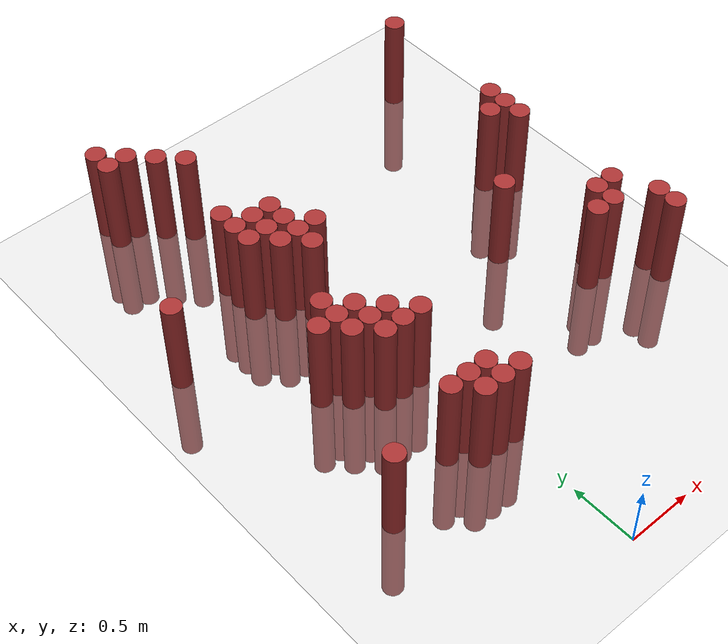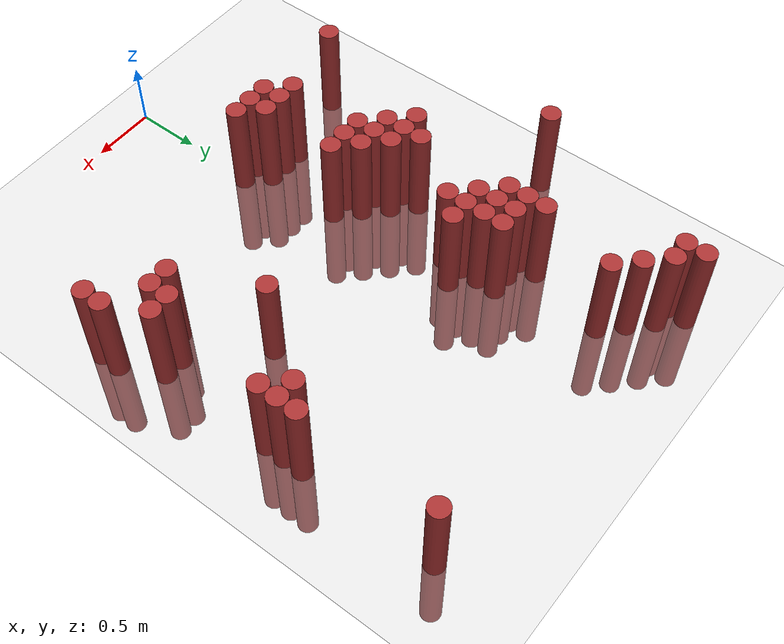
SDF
<sdf version="1.6">
 <world name="default">
  <model name="ground_plane">
   <static>1</static>
   <link name="link">
    <collision name="collision">
     <geometry><plane><normal>0 0 1</normal><size>100 100</size></plane></geometry>
     <surface><friction><ode><mu>100</mu><mu2>50</mu2></ode></friction></surface>
    </collision>
    <visual name="visual">
     <cast_shadows>0</cast_shadows>
     <geometry><plane><normal>0 0 1</normal><size>100 100</size></plane></geometry>
     <material>
      <script><uri>file://media/materials/scripts/gazebo.material</uri><name>Gazebo/Grey</name></script>
     </material>
    </visual>
   </link>
  </model>
  <model name="unit_cylinder_152">
   <static>1</static>
   <pose>-1.325000 2.875000 0.000000 0.000000 0.000000 0.000000</pose>
   <link name="link">
    <inertial>
     <mass>1</mass>
     <inertia><ixx>0.145833</ixx><ixy>0</ixy><ixz>0</ixz><iyy>0.145833</iyy><iyz>0</iyz><izz>0.125</izz></inertia>
    </inertial>
    <collision name="collision">
     <geometry><cylinder><radius>0.075000</radius><length>1.5</length></cylinder></geometry>
    </collision>
    <visual name="visual">
     <geometry><cylinder><radius>0.075000</radius><length>1.5</length></cylinder></geometry>
     <material>
      <ambient>0.648000 0.192000 0.192000 1</ambient>
      <diffuse>0.648000 0.192000 0.192000 1</diffuse>
     </material>
     <material>
      <script><name>Gazebo/Grey</name><uri>file://media/materials/scripts/gazebo.material</uri></script>
     </material>
    </visual>
   </link>
  </model>
  <model name="unit_cylinder_157">
   <static>1</static>
   <pose>-1.025000 1.075000 0.000000 0.000000 0.000000 0.000000</pose>
   <link name="link">
    <inertial>
     <mass>1</mass>
     <inertia><ixx>0.145833</ixx><ixy>0</ixy><ixz>0</ixz><iyy>0.145833</iyy><iyz>0</iyz><izz>0.125</izz></inertia>
    </inertial>
    <collision name="collision">
     <geometry><cylinder><radius>0.075000</radius><length>1.5</length></cylinder></geometry>
    </collision>
    <visual name="visual">
     <geometry><cylinder><radius>0.075000</radius><length>1.5</length></cylinder></geometry>
     <material>
      <ambient>0.648000 0.192000 0.192000 1</ambient>
      <diffuse>0.648000 0.192000 0.192000 1</diffuse>
     </material>
     <material>
      <script><name>Gazebo/Grey</name><uri>file://media/materials/scripts/gazebo.material</uri></script>
     </material>
    </visual>
   </link>
  </model>
  <model name="unit_cylinder_161">
   <static>1</static>
   <pose>-0.875000 4.225000 0.000000 0.000000 0.000000 0.000000</pose>
   <link name="link">
    <inertial>
     <mass>1</mass>
     <inertia><ixx>0.145833</ixx><ixy>0</ixy><ixz>0</ixz><iyy>0.145833</iyy><iyz>0</iyz><izz>0.125</izz></inertia>
    </inertial>
    <collision name="collision">
     <geometry><cylinder><radius>0.075000</radius><length>1.5</length></cylinder></geometry>
    </collision>
    <visual name="visual">
     <geometry><cylinder><radius>0.075000</radius><length>1.5</length></cylinder></geometry>
     <material>
      <ambient>0.648000 0.192000 0.192000 1</ambient>
      <diffuse>0.648000 0.192000 0.192000 1</diffuse>
     </material>
     <material>
      <script><name>Gazebo/Grey</name><uri>file://media/materials/scripts/gazebo.material</uri></script>
     </material>
    </visual>
   </link>
  </model>
  <model name="unit_cylinder_162">
   <static>1</static>
   <pose>-0.875000 4.375000 0.000000 0.000000 0.000000 0.000000</pose>
   <link name="link">
    <inertial>
     <mass>1</mass>
     <inertia><ixx>0.145833</ixx><ixy>0</ixy><ixz>0</ixz><iyy>0.145833</iyy><iyz>0</iyz><izz>0.125</izz></inertia>
    </inertial>
    <collision name="collision">
     <geometry><cylinder><radius>0.075000</radius><length>1.5</length></cylinder></geometry>
    </collision>
    <visual name="visual">
     <geometry><cylinder><radius>0.075000</radius><length>1.5</length></cylinder></geometry>
     <material>
      <ambient>0.648000 0.192000 0.192000 1</ambient>
      <diffuse>0.648000 0.192000 0.192000 1</diffuse>
     </material>
     <material>
      <script><name>Gazebo/Grey</name><uri>file://media/materials/scripts/gazebo.material</uri></script>
     </material>
    </visual>
   </link>
  </model>
  <model name="unit_cylinder_166">
   <static>1</static>
   <pose>-0.725000 2.125000 0.000000 0.000000 0.000000 0.000000</pose>
   <link name="link">
    <inertial>
     <mass>1</mass>
     <inertia><ixx>0.145833</ixx><ixy>0</ixy><ixz>0</ixz><iyy>0.145833</iyy><iyz>0</iyz><izz>0.125</izz></inertia>
    </inertial>
    <collision name="collision">
     <geometry><cylinder><radius>0.075000</radius><length>1.5</length></cylinder></geometry>
    </collision>
    <visual name="visual">
     <geometry><cylinder><radius>0.075000</radius><length>1.5</length></cylinder></geometry>
     <material>
      <ambient>0.648000 0.192000 0.192000 1</ambient>
      <diffuse>0.648000 0.192000 0.192000 1</diffuse>
     </material>
     <material>
      <script><name>Gazebo/Grey</name><uri>file://media/materials/scripts/gazebo.material</uri></script>
     </material>
    </visual>
   </link>
  </model>
  <model name="unit_cylinder_167">
   <static>1</static>
   <pose>-0.725000 4.225000 0.000000 0.000000 0.000000 0.000000</pose>
   <link name="link">
    <inertial>
     <mass>1</mass>
     <inertia><ixx>0.145833</ixx><ixy>0</ixy><ixz>0</ixz><iyy>0.145833</iyy><iyz>0</iyz><izz>0.125</izz></inertia>
    </inertial>
    <collision name="collision">
     <geometry><cylinder><radius>0.075000</radius><length>1.5</length></cylinder></geometry>
    </collision>
    <visual name="visual">
     <geometry><cylinder><radius>0.075000</radius><length>1.5</length></cylinder></geometry>
     <material>
      <ambient>0.648000 0.192000 0.192000 1</ambient>
      <diffuse>0.648000 0.192000 0.192000 1</diffuse>
     </material>
     <material>
      <script><name>Gazebo/Grey</name><uri>file://media/materials/scripts/gazebo.material</uri></script>
     </material>
    </visual>
   </link>
  </model>
  <model name="unit_cylinder_169">
   <static>1</static>
   <pose>-0.575000 1.975000 0.000000 0.000000 0.000000 0.000000</pose>
   <link name="link">
    <inertial>
     <mass>1</mass>
     <inertia><ixx>0.145833</ixx><ixy>0</ixy><ixz>0</ixz><iyy>0.145833</iyy><iyz>0</iyz><izz>0.125</izz></inertia>
    </inertial>
    <collision name="collision">
     <geometry><cylinder><radius>0.075000</radius><length>1.5</length></cylinder></geometry>
    </collision>
    <visual name="visual">
     <geometry><cylinder><radius>0.075000</radius><length>1.5</length></cylinder></geometry>
     <material>
      <ambient>0.648000 0.192000 0.192000 1</ambient>
      <diffuse>0.648000 0.192000 0.192000 1</diffuse>
     </material>
     <material>
      <script><name>Gazebo/Grey</name><uri>file://media/materials/scripts/gazebo.material</uri></script>
     </material>
    </visual>
   </link>
  </model>
  <model name="unit_cylinder_170">
   <static>1</static>
   <pose>-0.575000 2.125000 0.000000 0.000000 0.000000 0.000000</pose>
   <link name="link">
    <inertial>
     <mass>1</mass>
     <inertia><ixx>0.145833</ixx><ixy>0</ixy><ixz>0</ixz><iyy>0.145833</iyy><iyz>0</iyz><izz>0.125</izz></inertia>
    </inertial>
    <collision name="collision">
     <geometry><cylinder><radius>0.075000</radius><length>1.5</length></cylinder></geometry>
    </collision>
    <visual name="visual">
     <geometry><cylinder><radius>0.075000</radius><length>1.5</length></cylinder></geometry>
     <material>
      <ambient>0.648000 0.192000 0.192000 1</ambient>
      <diffuse>0.648000 0.192000 0.192000 1</diffuse>
     </material>
     <material>
      <script><name>Gazebo/Grey</name><uri>file://media/materials/scripts/gazebo.material</uri></script>
     </material>
    </visual>
   </link>
  </model>
  <model name="unit_cylinder_171">
   <static>1</static>
   <pose>-0.575000 2.275000 0.000000 0.000000 0.000000 0.000000</pose>
   <link name="link">
    <inertial>
     <mass>1</mass>
     <inertia><ixx>0.145833</ixx><ixy>0</ixy><ixz>0</ixz><iyy>0.145833</iyy><iyz>0</iyz><izz>0.125</izz></inertia>
    </inertial>
    <collision name="collision">
     <geometry><cylinder><radius>0.075000</radius><length>1.5</length></cylinder></geometry>
    </collision>
    <visual name="visual">
     <geometry><cylinder><radius>0.075000</radius><length>1.5</length></cylinder></geometry>
     <material>
      <ambient>0.648000 0.192000 0.192000 1</ambient>
      <diffuse>0.648000 0.192000 0.192000 1</diffuse>
     </material>
     <material>
      <script><name>Gazebo/Grey</name><uri>file://media/materials/scripts/gazebo.material</uri></script>
     </material>
    </visual>
   </link>
  </model>
  <model name="unit_cylinder_172">
   <static>1</static>
   <pose>-0.575000 3.025000 0.000000 0.000000 0.000000 0.000000</pose>
   <link name="link">
    <inertial>
     <mass>1</mass>
     <inertia><ixx>0.145833</ixx><ixy>0</ixy><ixz>0</ixz><iyy>0.145833</iyy><iyz>0</iyz><izz>0.125</izz></inertia>
    </inertial>
    <collision name="collision">
     <geometry><cylinder><radius>0.075000</radius><length>1.5</length></cylinder></geometry>
    </collision>
    <visual name="visual">
     <geometry><cylinder><radius>0.075000</radius><length>1.5</length></cylinder></geometry>
     <material>
      <ambient>0.648000 0.192000 0.192000 1</ambient>
      <diffuse>0.648000 0.192000 0.192000 1</diffuse>
     </material>
     <material>
      <script><name>Gazebo/Grey</name><uri>file://media/materials/scripts/gazebo.material</uri></script>
     </material>
    </visual>
   </link>
  </model>
  <model name="unit_cylinder_173">
   <static>1</static>
   <pose>-0.575000 3.175000 0.000000 0.000000 0.000000 0.000000</pose>
   <link name="link">
    <inertial>
     <mass>1</mass>
     <inertia><ixx>0.145833</ixx><ixy>0</ixy><ixz>0</ixz><iyy>0.145833</iyy><iyz>0</iyz><izz>0.125</izz></inertia>
    </inertial>
    <collision name="collision">
     <geometry><cylinder><radius>0.075000</radius><length>1.5</length></cylinder></geometry>
    </collision>
    <visual name="visual">
     <geometry><cylinder><radius>0.075000</radius><length>1.5</length></cylinder></geometry>
     <material>
      <ambient>0.648000 0.192000 0.192000 1</ambient>
      <diffuse>0.648000 0.192000 0.192000 1</diffuse>
     </material>
     <material>
      <script><name>Gazebo/Grey</name><uri>file://media/materials/scripts/gazebo.material</uri></script>
     </material>
    </visual>
   </link>
  </model>
  <model name="unit_cylinder_174">
   <static>1</static>
   <pose>-0.575000 3.325000 0.000000 0.000000 0.000000 0.000000</pose>
   <link name="link">
    <inertial>
     <mass>1</mass>
     <inertia><ixx>0.145833</ixx><ixy>0</ixy><ixz>0</ixz><iyy>0.145833</iyy><iyz>0</iyz><izz>0.125</izz></inertia>
    </inertial>
    <collision name="collision">
     <geometry><cylinder><radius>0.075000</radius><length>1.5</length></cylinder></geometry>
    </collision>
    <visual name="visual">
     <geometry><cylinder><radius>0.075000</radius><length>1.5</length></cylinder></geometry>
     <material>
      <ambient>0.648000 0.192000 0.192000 1</ambient>
      <diffuse>0.648000 0.192000 0.192000 1</diffuse>
     </material>
     <material>
      <script><name>Gazebo/Grey</name><uri>file://media/materials/scripts/gazebo.material</uri></script>
     </material>
    </visual>
   </link>
  </model>
  <model name="unit_cylinder_175">
   <static>1</static>
   <pose>-0.575000 4.075000 0.000000 0.000000 0.000000 0.000000</pose>
   <link name="link">
    <inertial>
     <mass>1</mass>
     <inertia><ixx>0.145833</ixx><ixy>0</ixy><ixz>0</ixz><iyy>0.145833</iyy><iyz>0</iyz><izz>0.125</izz></inertia>
    </inertial>
    <collision name="collision">
     <geometry><cylinder><radius>0.075000</radius><length>1.5</length></cylinder></geometry>
    </collision>
    <visual name="visual">
     <geometry><cylinder><radius>0.075000</radius><length>1.5</length></cylinder></geometry>
     <material>
      <ambient>0.648000 0.192000 0.192000 1</ambient>
      <diffuse>0.648000 0.192000 0.192000 1</diffuse>
     </material>
     <material>
      <script><name>Gazebo/Grey</name><uri>file://media/materials/scripts/gazebo.material</uri></script>
     </material>
    </visual>
   </link>
  </model>
  <model name="unit_cylinder_176">
   <static>1</static>
   <pose>-0.425000 1.225000 0.000000 0.000000 0.000000 0.000000</pose>
   <link name="link">
    <inertial>
     <mass>1</mass>
     <inertia><ixx>0.145833</ixx><ixy>0</ixy><ixz>0</ixz><iyy>0.145833</iyy><iyz>0</iyz><izz>0.125</izz></inertia>
    </inertial>
    <collision name="collision">
     <geometry><cylinder><radius>0.075000</radius><length>1.5</length></cylinder></geometry>
    </collision>
    <visual name="visual">
     <geometry><cylinder><radius>0.075000</radius><length>1.5</length></cylinder></geometry>
     <material>
      <ambient>0.648000 0.192000 0.192000 1</ambient>
      <diffuse>0.648000 0.192000 0.192000 1</diffuse>
     </material>
     <material>
      <script><name>Gazebo/Grey</name><uri>file://media/materials/scripts/gazebo.material</uri></script>
     </material>
    </visual>
   </link>
  </model>
  <model name="unit_cylinder_177">
   <static>1</static>
   <pose>-0.425000 1.825000 0.000000 0.000000 0.000000 0.000000</pose>
   <link name="link">
    <inertial>
     <mass>1</mass>
     <inertia><ixx>0.145833</ixx><ixy>0</ixy><ixz>0</ixz><iyy>0.145833</iyy><iyz>0</iyz><izz>0.125</izz></inertia>
    </inertial>
    <collision name="collision">
     <geometry><cylinder><radius>0.075000</radius><length>1.5</length></cylinder></geometry>
    </collision>
    <visual name="visual">
     <geometry><cylinder><radius>0.075000</radius><length>1.5</length></cylinder></geometry>
     <material>
      <ambient>0.648000 0.192000 0.192000 1</ambient>
      <diffuse>0.648000 0.192000 0.192000 1</diffuse>
     </material>
     <material>
      <script><name>Gazebo/Grey</name><uri>file://media/materials/scripts/gazebo.material</uri></script>
     </material>
    </visual>
   </link>
  </model>
  <model name="unit_cylinder_178">
   <static>1</static>
   <pose>-0.425000 1.975000 0.000000 0.000000 0.000000 0.000000</pose>
   <link name="link">
    <inertial>
     <mass>1</mass>
     <inertia><ixx>0.145833</ixx><ixy>0</ixy><ixz>0</ixz><iyy>0.145833</iyy><iyz>0</iyz><izz>0.125</izz></inertia>
    </inertial>
    <collision name="collision">
     <geometry><cylinder><radius>0.075000</radius><length>1.5</length></cylinder></geometry>
    </collision>
    <visual name="visual">
     <geometry><cylinder><radius>0.075000</radius><length>1.5</length></cylinder></geometry>
     <material>
      <ambient>0.648000 0.192000 0.192000 1</ambient>
      <diffuse>0.648000 0.192000 0.192000 1</diffuse>
     </material>
     <material>
      <script><name>Gazebo/Grey</name><uri>file://media/materials/scripts/gazebo.material</uri></script>
     </material>
    </visual>
   </link>
  </model>
  <model name="unit_cylinder_179">
   <static>1</static>
   <pose>-0.425000 2.125000 0.000000 0.000000 0.000000 0.000000</pose>
   <link name="link">
    <inertial>
     <mass>1</mass>
     <inertia><ixx>0.145833</ixx><ixy>0</ixy><ixz>0</ixz><iyy>0.145833</iyy><iyz>0</iyz><izz>0.125</izz></inertia>
    </inertial>
    <collision name="collision">
     <geometry><cylinder><radius>0.075000</radius><length>1.5</length></cylinder></geometry>
    </collision>
    <visual name="visual">
     <geometry><cylinder><radius>0.075000</radius><length>1.5</length></cylinder></geometry>
     <material>
      <ambient>0.648000 0.192000 0.192000 1</ambient>
      <diffuse>0.648000 0.192000 0.192000 1</diffuse>
     </material>
     <material>
      <script><name>Gazebo/Grey</name><uri>file://media/materials/scripts/gazebo.material</uri></script>
     </material>
    </visual>
   </link>
  </model>
  <model name="unit_cylinder_180">
   <static>1</static>
   <pose>-0.425000 2.875000 0.000000 0.000000 0.000000 0.000000</pose>
   <link name="link">
    <inertial>
     <mass>1</mass>
     <inertia><ixx>0.145833</ixx><ixy>0</ixy><ixz>0</ixz><iyy>0.145833</iyy><iyz>0</iyz><izz>0.125</izz></inertia>
    </inertial>
    <collision name="collision">
     <geometry><cylinder><radius>0.075000</radius><length>1.5</length></cylinder></geometry>
    </collision>
    <visual name="visual">
     <geometry><cylinder><radius>0.075000</radius><length>1.5</length></cylinder></geometry>
     <material>
      <ambient>0.648000 0.192000 0.192000 1</ambient>
      <diffuse>0.648000 0.192000 0.192000 1</diffuse>
     </material>
     <material>
      <script><name>Gazebo/Grey</name><uri>file://media/materials/scripts/gazebo.material</uri></script>
     </material>
    </visual>
   </link>
  </model>
  <model name="unit_cylinder_181">
   <static>1</static>
   <pose>-0.425000 3.025000 0.000000 0.000000 0.000000 0.000000</pose>
   <link name="link">
    <inertial>
     <mass>1</mass>
     <inertia><ixx>0.145833</ixx><ixy>0</ixy><ixz>0</ixz><iyy>0.145833</iyy><iyz>0</iyz><izz>0.125</izz></inertia>
    </inertial>
    <collision name="collision">
     <geometry><cylinder><radius>0.075000</radius><length>1.5</length></cylinder></geometry>
    </collision>
    <visual name="visual">
     <geometry><cylinder><radius>0.075000</radius><length>1.5</length></cylinder></geometry>
     <material>
      <ambient>0.648000 0.192000 0.192000 1</ambient>
      <diffuse>0.648000 0.192000 0.192000 1</diffuse>
     </material>
     <material>
      <script><name>Gazebo/Grey</name><uri>file://media/materials/scripts/gazebo.material</uri></script>
     </material>
    </visual>
   </link>
  </model>
  <model name="unit_cylinder_182">
   <static>1</static>
   <pose>-0.425000 3.175000 0.000000 0.000000 0.000000 0.000000</pose>
   <link name="link">
    <inertial>
     <mass>1</mass>
     <inertia><ixx>0.145833</ixx><ixy>0</ixy><ixz>0</ixz><iyy>0.145833</iyy><iyz>0</iyz><izz>0.125</izz></inertia>
    </inertial>
    <collision name="collision">
     <geometry><cylinder><radius>0.075000</radius><length>1.5</length></cylinder></geometry>
    </collision>
    <visual name="visual">
     <geometry><cylinder><radius>0.075000</radius><length>1.5</length></cylinder></geometry>
     <material>
      <ambient>0.648000 0.192000 0.192000 1</ambient>
      <diffuse>0.648000 0.192000 0.192000 1</diffuse>
     </material>
     <material>
      <script><name>Gazebo/Grey</name><uri>file://media/materials/scripts/gazebo.material</uri></script>
     </material>
    </visual>
   </link>
  </model>
  <model name="unit_cylinder_183">
   <static>1</static>
   <pose>-0.425000 3.925000 0.000000 0.000000 0.000000 0.000000</pose>
   <link name="link">
    <inertial>
     <mass>1</mass>
     <inertia><ixx>0.145833</ixx><ixy>0</ixy><ixz>0</ixz><iyy>0.145833</iyy><iyz>0</iyz><izz>0.125</izz></inertia>
    </inertial>
    <collision name="collision">
     <geometry><cylinder><radius>0.075000</radius><length>1.5</length></cylinder></geometry>
    </collision>
    <visual name="visual">
     <geometry><cylinder><radius>0.075000</radius><length>1.5</length></cylinder></geometry>
     <material>
      <ambient>0.648000 0.192000 0.192000 1</ambient>
      <diffuse>0.648000 0.192000 0.192000 1</diffuse>
     </material>
     <material>
      <script><name>Gazebo/Grey</name><uri>file://media/materials/scripts/gazebo.material</uri></script>
     </material>
    </visual>
   </link>
  </model>
  <model name="unit_cylinder_186">
   <static>1</static>
   <pose>-0.275000 1.075000 0.000000 0.000000 0.000000 0.000000</pose>
   <link name="link">
    <inertial>
     <mass>1</mass>
     <inertia><ixx>0.145833</ixx><ixy>0</ixy><ixz>0</ixz><iyy>0.145833</iyy><iyz>0</iyz><izz>0.125</izz></inertia>
    </inertial>
    <collision name="collision">
     <geometry><cylinder><radius>0.075000</radius><length>1.5</length></cylinder></geometry>
    </collision>
    <visual name="visual">
     <geometry><cylinder><radius>0.075000</radius><length>1.5</length></cylinder></geometry>
     <material>
      <ambient>0.648000 0.192000 0.192000 1</ambient>
      <diffuse>0.648000 0.192000 0.192000 1</diffuse>
     </material>
     <material>
      <script><name>Gazebo/Grey</name><uri>file://media/materials/scripts/gazebo.material</uri></script>
     </material>
    </visual>
   </link>
  </model>
  <model name="unit_cylinder_187">
   <static>1</static>
   <pose>-0.275000 1.225000 0.000000 0.000000 0.000000 0.000000</pose>
   <link name="link">
    <inertial>
     <mass>1</mass>
     <inertia><ixx>0.145833</ixx><ixy>0</ixy><ixz>0</ixz><iyy>0.145833</iyy><iyz>0</iyz><izz>0.125</izz></inertia>
    </inertial>
    <collision name="collision">
     <geometry><cylinder><radius>0.075000</radius><length>1.5</length></cylinder></geometry>
    </collision>
    <visual name="visual">
     <geometry><cylinder><radius>0.075000</radius><length>1.5</length></cylinder></geometry>
     <material>
      <ambient>0.648000 0.192000 0.192000 1</ambient>
      <diffuse>0.648000 0.192000 0.192000 1</diffuse>
     </material>
     <material>
      <script><name>Gazebo/Grey</name><uri>file://media/materials/scripts/gazebo.material</uri></script>
     </material>
    </visual>
   </link>
  </model>
  <model name="unit_cylinder_188">
   <static>1</static>
   <pose>-0.275000 1.825000 0.000000 0.000000 0.000000 0.000000</pose>
   <link name="link">
    <inertial>
     <mass>1</mass>
     <inertia><ixx>0.145833</ixx><ixy>0</ixy><ixz>0</ixz><iyy>0.145833</iyy><iyz>0</iyz><izz>0.125</izz></inertia>
    </inertial>
    <collision name="collision">
     <geometry><cylinder><radius>0.075000</radius><length>1.5</length></cylinder></geometry>
    </collision>
    <visual name="visual">
     <geometry><cylinder><radius>0.075000</radius><length>1.5</length></cylinder></geometry>
     <material>
      <ambient>0.648000 0.192000 0.192000 1</ambient>
      <diffuse>0.648000 0.192000 0.192000 1</diffuse>
     </material>
     <material>
      <script><name>Gazebo/Grey</name><uri>file://media/materials/scripts/gazebo.material</uri></script>
     </material>
    </visual>
   </link>
  </model>
  <model name="unit_cylinder_189">
   <static>1</static>
   <pose>-0.275000 1.975000 0.000000 0.000000 0.000000 0.000000</pose>
   <link name="link">
    <inertial>
     <mass>1</mass>
     <inertia><ixx>0.145833</ixx><ixy>0</ixy><ixz>0</ixz><iyy>0.145833</iyy><iyz>0</iyz><izz>0.125</izz></inertia>
    </inertial>
    <collision name="collision">
     <geometry><cylinder><radius>0.075000</radius><length>1.5</length></cylinder></geometry>
    </collision>
    <visual name="visual">
     <geometry><cylinder><radius>0.075000</radius><length>1.5</length></cylinder></geometry>
     <material>
      <ambient>0.648000 0.192000 0.192000 1</ambient>
      <diffuse>0.648000 0.192000 0.192000 1</diffuse>
     </material>
     <material>
      <script><name>Gazebo/Grey</name><uri>file://media/materials/scripts/gazebo.material</uri></script>
     </material>
    </visual>
   </link>
  </model>
  <model name="unit_cylinder_190">
   <static>1</static>
   <pose>-0.275000 2.725000 0.000000 0.000000 0.000000 0.000000</pose>
   <link name="link">
    <inertial>
     <mass>1</mass>
     <inertia><ixx>0.145833</ixx><ixy>0</ixy><ixz>0</ixz><iyy>0.145833</iyy><iyz>0</iyz><izz>0.125</izz></inertia>
    </inertial>
    <collision name="collision">
     <geometry><cylinder><radius>0.075000</radius><length>1.5</length></cylinder></geometry>
    </collision>
    <visual name="visual">
     <geometry><cylinder><radius>0.075000</radius><length>1.5</length></cylinder></geometry>
     <material>
      <ambient>0.648000 0.192000 0.192000 1</ambient>
      <diffuse>0.648000 0.192000 0.192000 1</diffuse>
     </material>
     <material>
      <script><name>Gazebo/Grey</name><uri>file://media/materials/scripts/gazebo.material</uri></script>
     </material>
    </visual>
   </link>
  </model>
  <model name="unit_cylinder_191">
   <static>1</static>
   <pose>-0.275000 2.875000 0.000000 0.000000 0.000000 0.000000</pose>
   <link name="link">
    <inertial>
     <mass>1</mass>
     <inertia><ixx>0.145833</ixx><ixy>0</ixy><ixz>0</ixz><iyy>0.145833</iyy><iyz>0</iyz><izz>0.125</izz></inertia>
    </inertial>
    <collision name="collision">
     <geometry><cylinder><radius>0.075000</radius><length>1.5</length></cylinder></geometry>
    </collision>
    <visual name="visual">
     <geometry><cylinder><radius>0.075000</radius><length>1.5</length></cylinder></geometry>
     <material>
      <ambient>0.648000 0.192000 0.192000 1</ambient>
      <diffuse>0.648000 0.192000 0.192000 1</diffuse>
     </material>
     <material>
      <script><name>Gazebo/Grey</name><uri>file://media/materials/scripts/gazebo.material</uri></script>
     </material>
    </visual>
   </link>
  </model>
  <model name="unit_cylinder_192">
   <static>1</static>
   <pose>-0.275000 3.025000 0.000000 0.000000 0.000000 0.000000</pose>
   <link name="link">
    <inertial>
     <mass>1</mass>
     <inertia><ixx>0.145833</ixx><ixy>0</ixy><ixz>0</ixz><iyy>0.145833</iyy><iyz>0</iyz><izz>0.125</izz></inertia>
    </inertial>
    <collision name="collision">
     <geometry><cylinder><radius>0.075000</radius><length>1.5</length></cylinder></geometry>
    </collision>
    <visual name="visual">
     <geometry><cylinder><radius>0.075000</radius><length>1.5</length></cylinder></geometry>
     <material>
      <ambient>0.648000 0.192000 0.192000 1</ambient>
      <diffuse>0.648000 0.192000 0.192000 1</diffuse>
     </material>
     <material>
      <script><name>Gazebo/Grey</name><uri>file://media/materials/scripts/gazebo.material</uri></script>
     </material>
    </visual>
   </link>
  </model>
  <model name="unit_cylinder_193">
   <static>1</static>
   <pose>-0.275000 3.175000 0.000000 0.000000 0.000000 0.000000</pose>
   <link name="link">
    <inertial>
     <mass>1</mass>
     <inertia><ixx>0.145833</ixx><ixy>0</ixy><ixz>0</ixz><iyy>0.145833</iyy><iyz>0</iyz><izz>0.125</izz></inertia>
    </inertial>
    <collision name="collision">
     <geometry><cylinder><radius>0.075000</radius><length>1.5</length></cylinder></geometry>
    </collision>
    <visual name="visual">
     <geometry><cylinder><radius>0.075000</radius><length>1.5</length></cylinder></geometry>
     <material>
      <ambient>0.648000 0.192000 0.192000 1</ambient>
      <diffuse>0.648000 0.192000 0.192000 1</diffuse>
     </material>
     <material>
      <script><name>Gazebo/Grey</name><uri>file://media/materials/scripts/gazebo.material</uri></script>
     </material>
    </visual>
   </link>
  </model>
  <model name="unit_cylinder_196">
   <static>1</static>
   <pose>-0.125000 1.075000 0.000000 0.000000 0.000000 0.000000</pose>
   <link name="link">
    <inertial>
     <mass>1</mass>
     <inertia><ixx>0.145833</ixx><ixy>0</ixy><ixz>0</ixz><iyy>0.145833</iyy><iyz>0</iyz><izz>0.125</izz></inertia>
    </inertial>
    <collision name="collision">
     <geometry><cylinder><radius>0.075000</radius><length>1.5</length></cylinder></geometry>
    </collision>
    <visual name="visual">
     <geometry><cylinder><radius>0.075000</radius><length>1.5</length></cylinder></geometry>
     <material>
      <ambient>0.648000 0.192000 0.192000 1</ambient>
      <diffuse>0.648000 0.192000 0.192000 1</diffuse>
     </material>
     <material>
      <script><name>Gazebo/Grey</name><uri>file://media/materials/scripts/gazebo.material</uri></script>
     </material>
    </visual>
   </link>
  </model>
  <model name="unit_cylinder_197">
   <static>1</static>
   <pose>-0.125000 1.225000 0.000000 0.000000 0.000000 0.000000</pose>
   <link name="link">
    <inertial>
     <mass>1</mass>
     <inertia><ixx>0.145833</ixx><ixy>0</ixy><ixz>0</ixz><iyy>0.145833</iyy><iyz>0</iyz><izz>0.125</izz></inertia>
    </inertial>
    <collision name="collision">
     <geometry><cylinder><radius>0.075000</radius><length>1.5</length></cylinder></geometry>
    </collision>
    <visual name="visual">
     <geometry><cylinder><radius>0.075000</radius><length>1.5</length></cylinder></geometry>
     <material>
      <ambient>0.648000 0.192000 0.192000 1</ambient>
      <diffuse>0.648000 0.192000 0.192000 1</diffuse>
     </material>
     <material>
      <script><name>Gazebo/Grey</name><uri>file://media/materials/scripts/gazebo.material</uri></script>
     </material>
    </visual>
   </link>
  </model>
  <model name="unit_cylinder_198">
   <static>1</static>
   <pose>-0.125000 1.825000 0.000000 0.000000 0.000000 0.000000</pose>
   <link name="link">
    <inertial>
     <mass>1</mass>
     <inertia><ixx>0.145833</ixx><ixy>0</ixy><ixz>0</ixz><iyy>0.145833</iyy><iyz>0</iyz><izz>0.125</izz></inertia>
    </inertial>
    <collision name="collision">
     <geometry><cylinder><radius>0.075000</radius><length>1.5</length></cylinder></geometry>
    </collision>
    <visual name="visual">
     <geometry><cylinder><radius>0.075000</radius><length>1.5</length></cylinder></geometry>
     <material>
      <ambient>0.648000 0.192000 0.192000 1</ambient>
      <diffuse>0.648000 0.192000 0.192000 1</diffuse>
     </material>
     <material>
      <script><name>Gazebo/Grey</name><uri>file://media/materials/scripts/gazebo.material</uri></script>
     </material>
    </visual>
   </link>
  </model>
  <model name="unit_cylinder_199">
   <static>1</static>
   <pose>-0.125000 2.875000 0.000000 0.000000 0.000000 0.000000</pose>
   <link name="link">
    <inertial>
     <mass>1</mass>
     <inertia><ixx>0.145833</ixx><ixy>0</ixy><ixz>0</ixz><iyy>0.145833</iyy><iyz>0</iyz><izz>0.125</izz></inertia>
    </inertial>
    <collision name="collision">
     <geometry><cylinder><radius>0.075000</radius><length>1.5</length></cylinder></geometry>
    </collision>
    <visual name="visual">
     <geometry><cylinder><radius>0.075000</radius><length>1.5</length></cylinder></geometry>
     <material>
      <ambient>0.648000 0.192000 0.192000 1</ambient>
      <diffuse>0.648000 0.192000 0.192000 1</diffuse>
     </material>
     <material>
      <script><name>Gazebo/Grey</name><uri>file://media/materials/scripts/gazebo.material</uri></script>
     </material>
    </visual>
   </link>
  </model>
  <model name="unit_cylinder_206">
   <static>1</static>
   <pose>0.025000 1.075000 0.000000 0.000000 0.000000 0.000000</pose>
   <link name="link">
    <inertial>
     <mass>1</mass>
     <inertia><ixx>0.145833</ixx><ixy>0</ixy><ixz>0</ixz><iyy>0.145833</iyy><iyz>0</iyz><izz>0.125</izz></inertia>
    </inertial>
    <collision name="collision">
     <geometry><cylinder><radius>0.075000</radius><length>1.5</length></cylinder></geometry>
    </collision>
    <visual name="visual">
     <geometry><cylinder><radius>0.075000</radius><length>1.5</length></cylinder></geometry>
     <material>
      <ambient>0.648000 0.192000 0.192000 1</ambient>
      <diffuse>0.648000 0.192000 0.192000 1</diffuse>
     </material>
     <material>
      <script><name>Gazebo/Grey</name><uri>file://media/materials/scripts/gazebo.material</uri></script>
     </material>
    </visual>
   </link>
  </model>
  <model name="unit_cylinder_210">
   <static>1</static>
   <pose>1.075000 2.275000 0.000000 0.000000 0.000000 0.000000</pose>
   <link name="link">
    <inertial>
     <mass>1</mass>
     <inertia><ixx>0.145833</ixx><ixy>0</ixy><ixz>0</ixz><iyy>0.145833</iyy><iyz>0</iyz><izz>0.125</izz></inertia>
    </inertial>
    <collision name="collision">
     <geometry><cylinder><radius>0.075000</radius><length>1.5</length></cylinder></geometry>
    </collision>
    <visual name="visual">
     <geometry><cylinder><radius>0.075000</radius><length>1.5</length></cylinder></geometry>
     <material>
      <ambient>0.648000 0.192000 0.192000 1</ambient>
      <diffuse>0.648000 0.192000 0.192000 1</diffuse>
     </material>
     <material>
      <script><name>Gazebo/Grey</name><uri>file://media/materials/scripts/gazebo.material</uri></script>
     </material>
    </visual>
   </link>
  </model>
  <model name="unit_cylinder_211">
   <static>1</static>
   <pose>1.375000 1.675000 0.000000 0.000000 0.000000 0.000000</pose>
   <link name="link">
    <inertial>
     <mass>1</mass>
     <inertia><ixx>0.145833</ixx><ixy>0</ixy><ixz>0</ixz><iyy>0.145833</iyy><iyz>0</iyz><izz>0.125</izz></inertia>
    </inertial>
    <collision name="collision">
     <geometry><cylinder><radius>0.075000</radius><length>1.5</length></cylinder></geometry>
    </collision>
    <visual name="visual">
     <geometry><cylinder><radius>0.075000</radius><length>1.5</length></cylinder></geometry>
     <material>
      <ambient>0.648000 0.192000 0.192000 1</ambient>
      <diffuse>0.648000 0.192000 0.192000 1</diffuse>
     </material>
     <material>
      <script><name>Gazebo/Grey</name><uri>file://media/materials/scripts/gazebo.material</uri></script>
     </material>
    </visual>
   </link>
  </model>
  <model name="unit_cylinder_212">
   <static>1</static>
   <pose>1.525000 1.675000 0.000000 0.000000 0.000000 0.000000</pose>
   <link name="link">
    <inertial>
     <mass>1</mass>
     <inertia><ixx>0.145833</ixx><ixy>0</ixy><ixz>0</ixz><iyy>0.145833</iyy><iyz>0</iyz><izz>0.125</izz></inertia>
    </inertial>
    <collision name="collision">
     <geometry><cylinder><radius>0.075000</radius><length>1.5</length></cylinder></geometry>
    </collision>
    <visual name="visual">
     <geometry><cylinder><radius>0.075000</radius><length>1.5</length></cylinder></geometry>
     <material>
      <ambient>0.648000 0.192000 0.192000 1</ambient>
      <diffuse>0.648000 0.192000 0.192000 1</diffuse>
     </material>
     <material>
      <script><name>Gazebo/Grey</name><uri>file://media/materials/scripts/gazebo.material</uri></script>
     </material>
    </visual>
   </link>
  </model>
  <model name="unit_cylinder_213">
   <static>1</static>
   <pose>1.525000 1.825000 0.000000 0.000000 0.000000 0.000000</pose>
   <link name="link">
    <inertial>
     <mass>1</mass>
     <inertia><ixx>0.145833</ixx><ixy>0</ixy><ixz>0</ixz><iyy>0.145833</iyy><iyz>0</iyz><izz>0.125</izz></inertia>
    </inertial>
    <collision name="collision">
     <geometry><cylinder><radius>0.075000</radius><length>1.5</length></cylinder></geometry>
    </collision>
    <visual name="visual">
     <geometry><cylinder><radius>0.075000</radius><length>1.5</length></cylinder></geometry>
     <material>
      <ambient>0.648000 0.192000 0.192000 1</ambient>
      <diffuse>0.648000 0.192000 0.192000 1</diffuse>
     </material>
     <material>
      <script><name>Gazebo/Grey</name><uri>file://media/materials/scripts/gazebo.material</uri></script>
     </material>
    </visual>
   </link>
  </model>
  <model name="unit_cylinder_214">
   <static>1</static>
   <pose>1.525000 2.875000 0.000000 0.000000 0.000000 0.000000</pose>
   <link name="link">
    <inertial>
     <mass>1</mass>
     <inertia><ixx>0.145833</ixx><ixy>0</ixy><ixz>0</ixz><iyy>0.145833</iyy><iyz>0</iyz><izz>0.125</izz></inertia>
    </inertial>
    <collision name="collision">
     <geometry><cylinder><radius>0.075000</radius><length>1.5</length></cylinder></geometry>
    </collision>
    <visual name="visual">
     <geometry><cylinder><radius>0.075000</radius><length>1.5</length></cylinder></geometry>
     <material>
      <ambient>0.648000 0.192000 0.192000 1</ambient>
      <diffuse>0.648000 0.192000 0.192000 1</diffuse>
     </material>
     <material>
      <script><name>Gazebo/Grey</name><uri>file://media/materials/scripts/gazebo.material</uri></script>
     </material>
    </visual>
   </link>
  </model>
  <model name="unit_cylinder_215">
   <static>1</static>
   <pose>1.675000 1.825000 0.000000 0.000000 0.000000 0.000000</pose>
   <link name="link">
    <inertial>
     <mass>1</mass>
     <inertia><ixx>0.145833</ixx><ixy>0</ixy><ixz>0</ixz><iyy>0.145833</iyy><iyz>0</iyz><izz>0.125</izz></inertia>
    </inertial>
    <collision name="collision">
     <geometry><cylinder><radius>0.075000</radius><length>1.5</length></cylinder></geometry>
    </collision>
    <visual name="visual">
     <geometry><cylinder><radius>0.075000</radius><length>1.5</length></cylinder></geometry>
     <material>
      <ambient>0.648000 0.192000 0.192000 1</ambient>
      <diffuse>0.648000 0.192000 0.192000 1</diffuse>
     </material>
     <material>
      <script><name>Gazebo/Grey</name><uri>file://media/materials/scripts/gazebo.material</uri></script>
     </material>
    </visual>
   </link>
  </model>
  <model name="unit_cylinder_216">
   <static>1</static>
   <pose>1.675000 2.725000 0.000000 0.000000 0.000000 0.000000</pose>
   <link name="link">
    <inertial>
     <mass>1</mass>
     <inertia><ixx>0.145833</ixx><ixy>0</ixy><ixz>0</ixz><iyy>0.145833</iyy><iyz>0</iyz><izz>0.125</izz></inertia>
    </inertial>
    <collision name="collision">
     <geometry><cylinder><radius>0.075000</radius><length>1.5</length></cylinder></geometry>
    </collision>
    <visual name="visual">
     <geometry><cylinder><radius>0.075000</radius><length>1.5</length></cylinder></geometry>
     <material>
      <ambient>0.648000 0.192000 0.192000 1</ambient>
      <diffuse>0.648000 0.192000 0.192000 1</diffuse>
     </material>
     <material>
      <script><name>Gazebo/Grey</name><uri>file://media/materials/scripts/gazebo.material</uri></script>
     </material>
    </visual>
   </link>
  </model>
  <model name="unit_cylinder_217">
   <static>1</static>
   <pose>1.675000 2.875000 0.000000 0.000000 0.000000 0.000000</pose>
   <link name="link">
    <inertial>
     <mass>1</mass>
     <inertia><ixx>0.145833</ixx><ixy>0</ixy><ixz>0</ixz><iyy>0.145833</iyy><iyz>0</iyz><izz>0.125</izz></inertia>
    </inertial>
    <collision name="collision">
     <geometry><cylinder><radius>0.075000</radius><length>1.5</length></cylinder></geometry>
    </collision>
    <visual name="visual">
     <geometry><cylinder><radius>0.075000</radius><length>1.5</length></cylinder></geometry>
     <material>
      <ambient>0.648000 0.192000 0.192000 1</ambient>
      <diffuse>0.648000 0.192000 0.192000 1</diffuse>
     </material>
     <material>
      <script><name>Gazebo/Grey</name><uri>file://media/materials/scripts/gazebo.material</uri></script>
     </material>
    </visual>
   </link>
  </model>
  <model name="unit_cylinder_218">
   <static>1</static>
   <pose>1.675000 3.025000 0.000000 0.000000 0.000000 0.000000</pose>
   <link name="link">
    <inertial>
     <mass>1</mass>
     <inertia><ixx>0.145833</ixx><ixy>0</ixy><ixz>0</ixz><iyy>0.145833</iyy><iyz>0</iyz><izz>0.125</izz></inertia>
    </inertial>
    <collision name="collision">
     <geometry><cylinder><radius>0.075000</radius><length>1.5</length></cylinder></geometry>
    </collision>
    <visual name="visual">
     <geometry><cylinder><radius>0.075000</radius><length>1.5</length></cylinder></geometry>
     <material>
      <ambient>0.648000 0.192000 0.192000 1</ambient>
      <diffuse>0.648000 0.192000 0.192000 1</diffuse>
     </material>
     <material>
      <script><name>Gazebo/Grey</name><uri>file://media/materials/scripts/gazebo.material</uri></script>
     </material>
    </visual>
   </link>
  </model>
  <model name="unit_cylinder_219">
   <static>1</static>
   <pose>1.675000 4.075000 0.000000 0.000000 0.000000 0.000000</pose>
   <link name="link">
    <inertial>
     <mass>1</mass>
     <inertia><ixx>0.145833</ixx><ixy>0</ixy><ixz>0</ixz><iyy>0.145833</iyy><iyz>0</iyz><izz>0.125</izz></inertia>
    </inertial>
    <collision name="collision">
     <geometry><cylinder><radius>0.075000</radius><length>1.5</length></cylinder></geometry>
    </collision>
    <visual name="visual">
     <geometry><cylinder><radius>0.075000</radius><length>1.5</length></cylinder></geometry>
     <material>
      <ambient>0.648000 0.192000 0.192000 1</ambient>
      <diffuse>0.648000 0.192000 0.192000 1</diffuse>
     </material>
     <material>
      <script><name>Gazebo/Grey</name><uri>file://media/materials/scripts/gazebo.material</uri></script>
     </material>
    </visual>
   </link>
  </model>
  <model name="unit_cylinder_220">
   <static>1</static>
   <pose>1.825000 1.375000 0.000000 0.000000 0.000000 0.000000</pose>
   <link name="link">
    <inertial>
     <mass>1</mass>
     <inertia><ixx>0.145833</ixx><ixy>0</ixy><ixz>0</ixz><iyy>0.145833</iyy><iyz>0</iyz><izz>0.125</izz></inertia>
    </inertial>
    <collision name="collision">
     <geometry><cylinder><radius>0.075000</radius><length>1.5</length></cylinder></geometry>
    </collision>
    <visual name="visual">
     <geometry><cylinder><radius>0.075000</radius><length>1.5</length></cylinder></geometry>
     <material>
      <ambient>0.648000 0.192000 0.192000 1</ambient>
      <diffuse>0.648000 0.192000 0.192000 1</diffuse>
     </material>
     <material>
      <script><name>Gazebo/Grey</name><uri>file://media/materials/scripts/gazebo.material</uri></script>
     </material>
    </visual>
   </link>
  </model>
  <model name="unit_cylinder_221">
   <static>1</static>
   <pose>1.825000 1.525000 0.000000 0.000000 0.000000 0.000000</pose>
   <link name="link">
    <inertial>
     <mass>1</mass>
     <inertia><ixx>0.145833</ixx><ixy>0</ixy><ixz>0</ixz><iyy>0.145833</iyy><iyz>0</iyz><izz>0.125</izz></inertia>
    </inertial>
    <collision name="collision">
     <geometry><cylinder><radius>0.075000</radius><length>1.5</length></cylinder></geometry>
    </collision>
    <visual name="visual">
     <geometry><cylinder><radius>0.075000</radius><length>1.5</length></cylinder></geometry>
     <material>
      <ambient>0.648000 0.192000 0.192000 1</ambient>
      <diffuse>0.648000 0.192000 0.192000 1</diffuse>
     </material>
     <material>
      <script><name>Gazebo/Grey</name><uri>file://media/materials/scripts/gazebo.material</uri></script>
     </material>
    </visual>
   </link>
  </model>
 </world>
</sdf>
